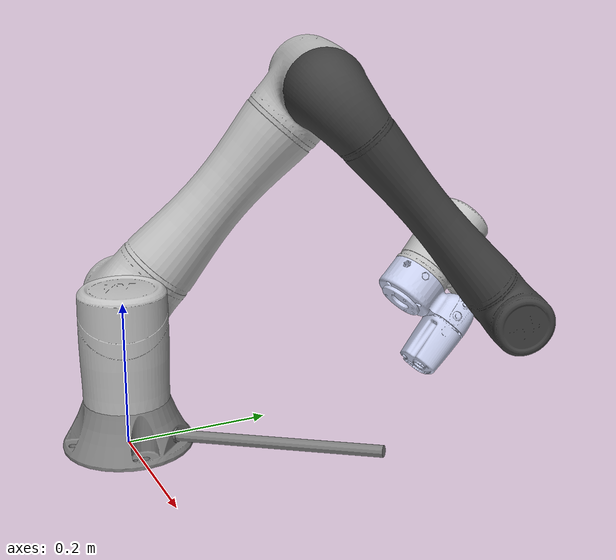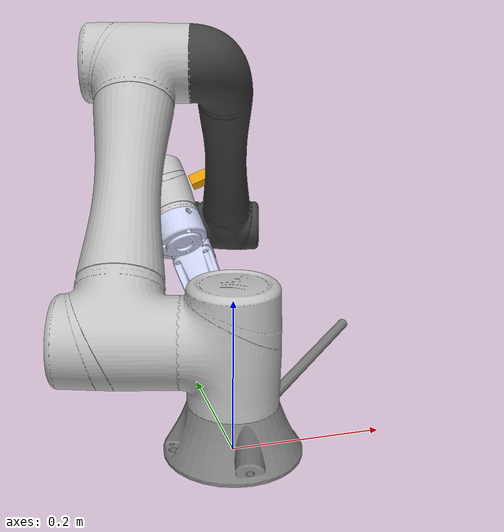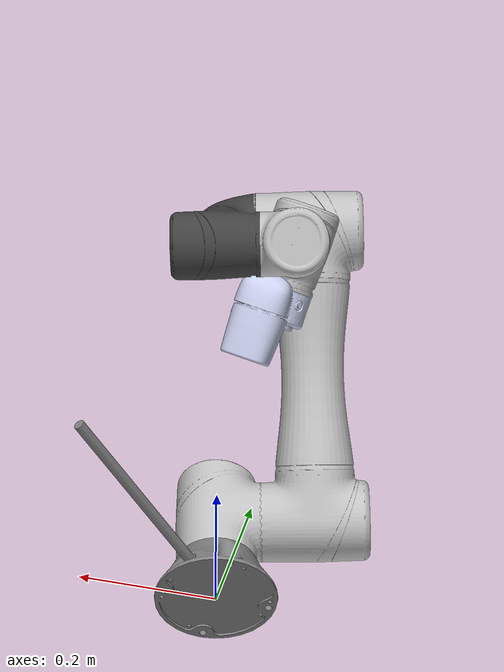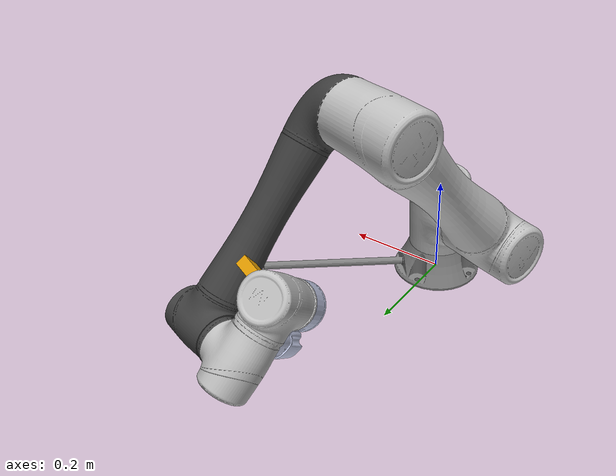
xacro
<?xml version="1.0"?>
<robot xmlns:xacro="http://www.ros.org/wiki/xacro" name="ur16">
    <xacro:arg name="initial_positions_file" default="initial_positions.yaml" />

    <!-- Import ur16 urdf file -->
    <xacro:include filename="$(find ur16)/urdf/ur16.urdf.xacro" />

    <!-- Import control_xacro -->
    <xacro:include filename="ur16.ros2_control.xacro" />

    <xacro:ur16_ros2_control name="FakeSystem" initial_positions_file="$(arg initial_positions_file)"/>

</robot>

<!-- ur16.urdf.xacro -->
<robot xmlns:xacro="http://www.ros.org/wiki/xacro" name="ur16">

    <link name="world"/>

    <joint name="world_joint" type="fixed">
        <parent link="world"/>
        <child link="base_link"/>
        <origin xyz="0 0 0" rpy="0 0 0"/>
    </joint>

    <link name="base_link">
        <visual>
            <origin xyz="0 0 0" rpy="0 0 0" />
            <geometry>
                <mesh filename="package://ur16/meshes/base_link.STL" />
            </geometry>
            <material name="">
                <color rgba="0.50196 0.50196 0.50196 1" />
            </material>
        </visual>
        <collision>
            <origin xyz="0 0 0" rpy="0 0 0" />
            <geometry>
                <mesh filename="package://ur16/meshes/base_link.STL" />
            </geometry>
        </collision>
    </link>

    <link name="l1">
        <inertial>
            <origin xyz="-0.0046617 0.064919 -2.9765E-05" rpy="0 0 0" />
            <mass value="0.60391" />
            <inertia ixx="0.002353" ixy="5.4163E-05" ixz="1.5509E-07" iyy="0.0015823" iyz="1.3637E-06" izz="0.0023074" />
        </inertial>
        <visual>
            <origin xyz="0 0 0" rpy="0 0 0" />
            <geometry>
                <mesh filename="package://ur16/meshes/l1.STL" />
            </geometry>
            <material name="">
                <color rgba="0.75294 0.75294 0.75294 1" />
            </material>
        </visual>
        <collision>
            <origin xyz="0 0 0" rpy="0 0 0" />
            <geometry>
                <mesh filename="package://ur16/meshes/l1.STL" />
            </geometry>
        </collision>
    </link>

    <joint name="j0" type="revolute">
        <origin xyz="0 0 0.0637" rpy="1.5708 0 -0.27865" />
        <parent link="base_link" />
        <child link="l1" />
        <axis xyz="0 1 0" />
        <limit lower="-3.14" upper="3.14" effort="150.0" velocity="3.14" />
        <dynamics damping="0.1" friction="0.1"/>
    </joint>

    <link name="l2">
        <inertial>
            <origin xyz="-0.2145 0.13338 2.9099E-06" rpy="0 0 0" />
            <mass value="1.5858" />
            <inertia ixx="0.0056431" ixy="-4.2324E-07" ixz="-8.3606E-08" iyy="0.008282" iyz="1.2335E-08" izz="0.0097323" />
        </inertial>
        <visual>
            <origin xyz="0 0 0" rpy="0 0 0" />
            <geometry>
                <mesh filename="package://ur16/meshes/l2.STL" />
            </geometry>
            <material name="">
                <color rgba="0.75294 0.75294 0.75294 1" />
            </material>
        </visual>
        <collision>
            <origin xyz="0 0 0" rpy="0 0 0" />
            <geometry>
                <mesh filename="package://ur16/meshes/l2.STL" />
            </geometry>
        </collision>
    </link>

    <joint name="j1" type="revolute">
        <origin xyz="0 0.0815 0" rpy="-3.1416 -0.72345 -1.5708" />
        <parent link="l1" />
        <child link="l2" />
        <axis xyz="0 1 0" />
        <limit lower="-3.14" upper="3.14" effort="150.0" velocity="3.14" />
        <dynamics damping="0.1" friction="0.1"/>
    </joint>

    <link name="l3">
        <inertial>
            <origin xyz="0.021277 -1.915E-05 -0.2439" rpy="0 0 0" />
            <mass value="0.52418" />
            <inertia ixx="0.002934" ixy="-2.8586E-07" ixz="-2.2358E-05" iyy="0.0028631" iyz="-3.1057E-07" izz="0.00079983" />
        </inertial>
        <visual>
            <origin xyz="0 0 0" rpy="0 0 0" />
            <geometry>
                <mesh filename="package://ur16/meshes/l3.STL" />
            </geometry>
            <material name="">
                <color rgba="0.25098 0.25098 0.25098 1" />
            </material>
        </visual>
        <collision>
            <origin xyz="0 0 0" rpy="0 0 0" />
            <geometry>
                <mesh filename="package://ur16/meshes/l3.STL" />
            </geometry>
        </collision>
    </link>

    <joint name="j2" type="revolute">
        <origin xyz="-0.429 0 0" rpy="-2.9857 0 1.5708" />
        <parent link="l2" />
        <child link="l3" />
        <axis xyz="1 0 0" />
        <limit lower="-3.14" upper="3.14" effort="150.0" velocity="3.14" />
        <dynamics damping="0.1" friction="0.1"/>
    </joint>

    <link name="l4">
        <inertial>
            <origin xyz="0.087858 -0.0061462 -3.5534E-05" rpy="0 0 0" />
            <mass value="0.20633" />
            <inertia ixx="0.00030474" ixy="-6.8226E-07" ixz="3.1675E-08" iyy="0.00029424" iyz="1.5424E-07" izz="0.00028633" />
        </inertial>
        <visual>
            <origin xyz="0 0 0" rpy="0 0 0" />
            <geometry>
                <mesh filename="package://ur16/meshes/l4.STL" />
            </geometry>
            <material name="">
                <color rgba="0.75294 0.75294 0.75294 1" />
            </material>
        </visual>
        <collision>
            <origin xyz="0 0 0" rpy="0 0 0" />
            <geometry>
                <mesh filename="package://ur16/meshes/l4.STL" />
            </geometry>
        </collision>
    </link>

    <joint name="j3" type="revolute">
        <origin xyz="0.033271 0 -0.4115" rpy="-1.6624 0 0" />
        <parent link="l3" />
        <child link="l4" />
        <axis xyz="1 0 0" />
        <limit lower="-3.14" upper="3.14" effort="150.0" velocity="3.14" />
        <dynamics damping="0.1" friction="0.1"/>
    </joint>

    <link name="l5">
        <inertial>
            <origin xyz="0.10483 -0.0061459 -3.5856E-05" rpy="0 0 0" />
            <mass value="0.20634" />
            <inertia ixx="0.00030473" ixy="-6.8916E-07" ixz="2.7167E-08" iyy="0.00029425" iyz="1.5482E-07" izz="0.00028632" />
        </inertial>
        <visual>
            <origin xyz="0 0 0" rpy="0 0 0" />
            <geometry>
                <mesh filename="package://ur16/meshes/l5.STL" />
            </geometry>
            <material name="">
                <color rgba="0.75294 0.75294 0.75294 1" />
            </material>
        </visual>
        <collision>
            <origin xyz="0 0 0" rpy="0 0 0" />
            <geometry>
                <mesh filename="package://ur16/meshes/l5.STL" />
            </geometry>
        </collision>
    </link>

    <joint name="j4" type="revolute">
        <origin xyz="0.089529 0 0" rpy="-1.2165 0 -1.5708" />
        <parent link="l4" />
        <child link="l5" />
        <axis xyz="1 0 0" />
        <limit lower="-3.14" upper="3.14" effort="150.0" velocity="3.14" />
        <dynamics damping="0.1" friction="0.1"/>
    </joint>

    <link name="l6">
        <inertial>
            <origin xyz="0.041524 -0.09918 0.0008719" rpy="0 0 0" />
            <mass value="0.19187" />
            <inertia ixx="0.00017779" ixy="-2.4288E-05" ixz="-5.8881E-06" iyy="0.00035295" iyz="-2.7322E-06" izz="0.00030218" />
        </inertial>
        <visual>
            <origin xyz="0 0 0" rpy="0 0 0" />
            <geometry>
                <mesh filename="package://ur16/meshes/l6.STL" />
            </geometry>
            <material name="">
                <color rgba="0.79216 0.81961 0.93333 1" />
            </material>
        </visual>
        <collision>
            <origin xyz="0 0 0" rpy="0 0 0" />
            <geometry>
                <mesh filename="package://ur16/meshes/l6.STL" />
            </geometry>
        </collision>
    </link>

    <joint name="j5" type="revolute">
        <origin xyz="0.1065 0 0" rpy="3.1416 0.231 3.1416" />
        <parent link="l5" />
        <child link="l6" />
        <axis xyz="0 1 0" />
        <limit lower="-3.14" upper="3.14" effort="150.0" velocity="3.14" />
        <dynamics damping="0.1" friction="0.1"/>
    </joint>

    <link name="tool0">
        <inertial>
            <origin xyz="0 0 0" rpy="0 0 0"/>
            <mass value="0.01"/>
            <inertia ixx="1e-6" ixy="0" ixz="0" iyy="1e-6" iyz="0" izz="1e-6"/>
        </inertial>
        <visual>
            <origin xyz="0 0 0.02" rpy="0 0 0"/>
            <geometry>
                <box size="0.02 0.02 0.04"/>
            </geometry>
        </visual>
        <collision>
            <origin xyz="0 0 0.02" rpy="0 0 0"/>
            <geometry>
                <box size="0.02 0.02 0.04"/>
            </geometry>
        </collision>
    </link>

    <joint name="ee_fixed" type="fixed">
        <parent link="l6"/>
        <child link="tool0"/>
        <origin xyz="0 0 0.05" rpy="0 0 0"/>
    </joint>

    <ros2_control name="GazeboSystem" type="system">
        <hardware>
            <plugin>gazebo_ros2_control/GazeboSystem</plugin>
        </hardware>

        <joint name="j0">
            <command_interface name="position"/>
            <state_interface name="position"/>
            <state_interface name="velocity"/>
        </joint>
        <joint name="j1">
            <command_interface name="position"/>
            <state_interface name="position"/>
            <state_interface name="velocity"/>
        </joint>
        <joint name="j2">
            <command_interface name="position"/>
            <state_interface name="position"/>
            <state_interface name="velocity"/>
        </joint>
        <joint name="j3">
            <command_interface name="position"/>
            <state_interface name="position"/>
            <state_interface name="velocity"/>
        </joint>
        <joint name="j4">
            <command_interface name="position"/>
            <state_interface name="position"/>
            <state_interface name="velocity"/>
        </joint>
        <joint name="j5">
            <command_interface name="position"/>
            <state_interface name="position"/>
            <state_interface name="velocity"/>
        </joint>
    </ros2_control>

    </robot>
